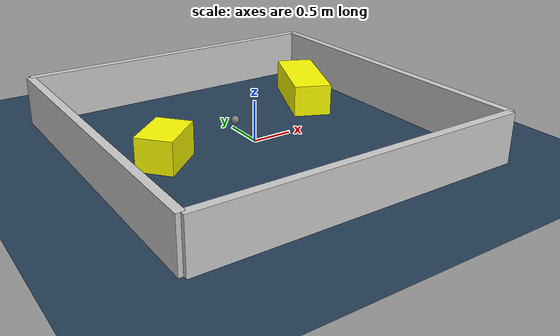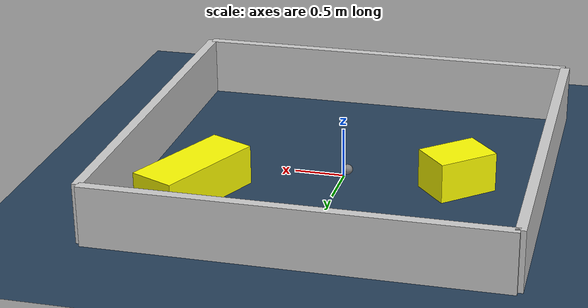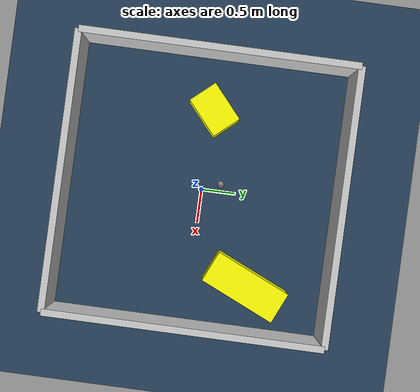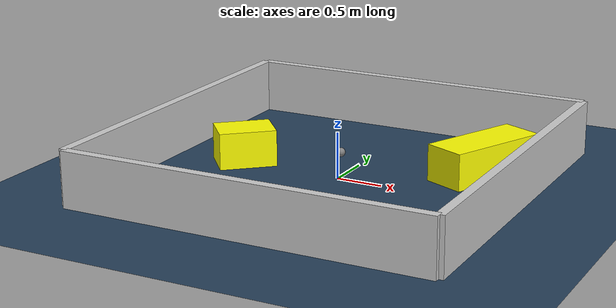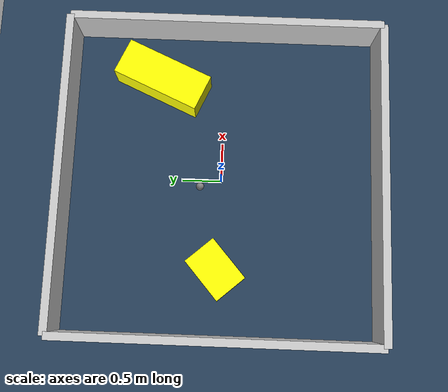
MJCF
<?xml version="1.0" ?>
<mujoco model="generated_environment">
  <option timestep="0.01" integrator="RK4" cone="elliptic"/>
  <default>
    <geom density="1"/>
  </default>
  <asset>
    <texture builtin="gradient" height="3072" rgb1="0.3 0.5 0.7" rgb2="0 0 0" type="skybox" width="512"/>
    <texture builtin="checker" height="300" mark="edge" markrgb="0.8 0.8 0.8" name="groundplane" rgb1="0.2 0.3 0.4" rgb2="0.1 0.2 0.3" type="2d" width="300"/>
    <material name="groundplane" reflectance="0.2" texrepeat="5 5" texture="groundplane" texuniform="true"/>
    <material name="robot" rgba="0.0 1.0 0.0 1"/>
  </asset>
  <worldbody>
    <light dir="0 0 -1" directional="true" pos="0 0 1.5"/>
    <geom condim="4" friction="1.0 0.005 0.001" material="groundplane" name="floor" size="0 0 0.05" type="plane"/>
    <body name="walls">
      <geom name="wall_1" condim="4" pos="-2.0 0.0 0.3" rgba="0.800000011920929 0.800000011920929 0.800000011920929 1.0" size="0.05 2.0 0.3" type="box"/>
      <geom name="wall_2" condim="4" pos="2.0 0.0 0.3" rgba="0.800000011920929 0.800000011920929 0.800000011920929 1.0" size="0.05 2.0 0.3" type="box"/>
      <geom name="wall_3" condim="4" pos="0.0 -2.0 0.3" rgba="0.800000011920929 0.800000011920929 0.800000011920929 1.0" size="2.0 0.05 0.3" type="box"/>
      <geom name="wall_4" condim="4" pos="0.0 2.0 0.3" rgba="0.800000011920929 0.800000011920929 0.800000011920929 1.0" size="2.0 0.05 0.3" type="box"/>
    </body>
    <body name="robot">
      <joint name="joint_x" type="slide" pos="0 0 0" axis="1 0 0"/>
      <joint name="joint_y" type="slide" pos="0 0 0" axis="0 1 0"/>
      <geom name="robot" type="sphere" pos="-0.1033665926684233 0.2673535626199559 0.2" size="0.05" mass="5." friction="1.0 0.005 0.0001" condim="4"/>
      <site name="sensor_ball"/>
    </body>
    <body name="obstacle_1_movable">
      <geom name="obstacle_1_movable" condim="4" pos="1.3114824104423417 0.8055006227064472 0.2" euler="0 0 155.8893551689296" friction="1.0 0.005 0.001" rgba="1 1 0 1" size="0.23681804935106843 0.5784405899948432 0.2" type="box" mass="0.1"/>
      <joint type="free"/>
    </body>
    <body name="obstacle_2_movable">
      <geom name="obstacle_2_movable" condim="4" pos="-1.154093202880443 0.03666054863612378 0.2" euler="0 0 310.9459729205316" friction="1.0 0.005 0.001" rgba="1 1 0 1" size="0.22234885231043783 0.3098680985898873 0.2" type="box" mass="0.1"/>
      <joint type="free"/>
    </body>
  </worldbody>
  <actuator>
    <motor name="actuator_x" joint="joint_x" gear="1" ctrlrange="-1 1"/>
    <motor name="actuator_y" joint="joint_y" gear="1" ctrlrange="-1 1"/>
  </actuator>
</mujoco>
